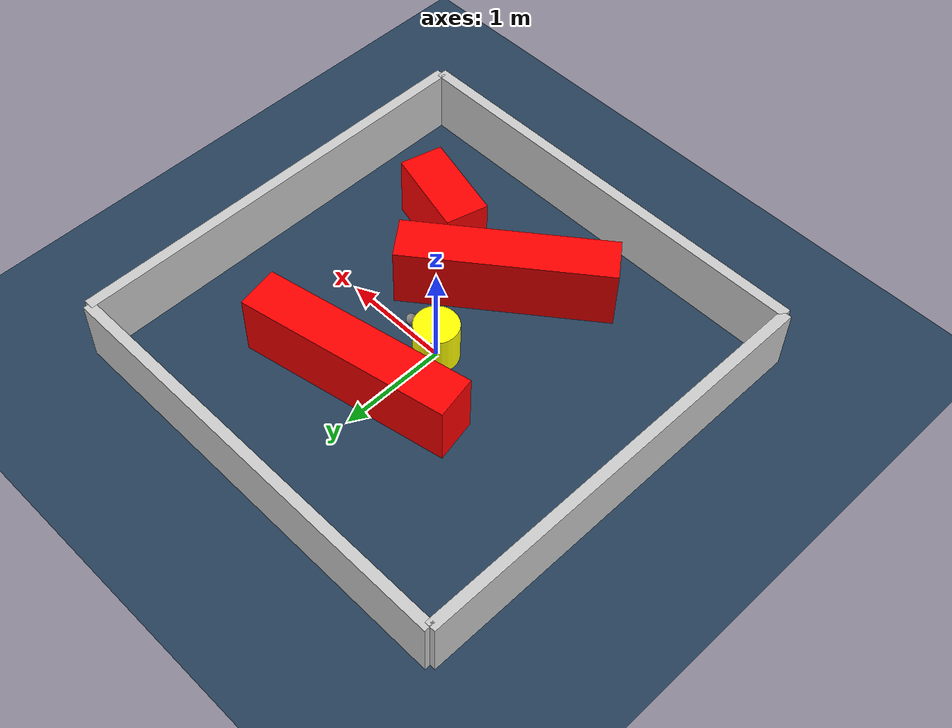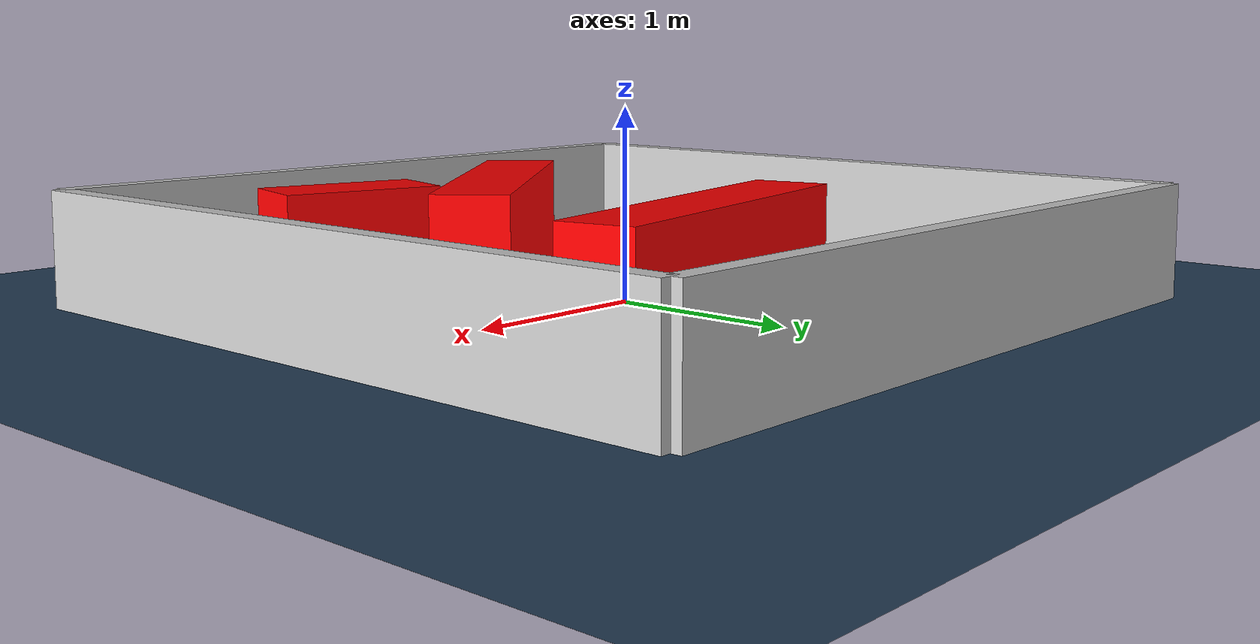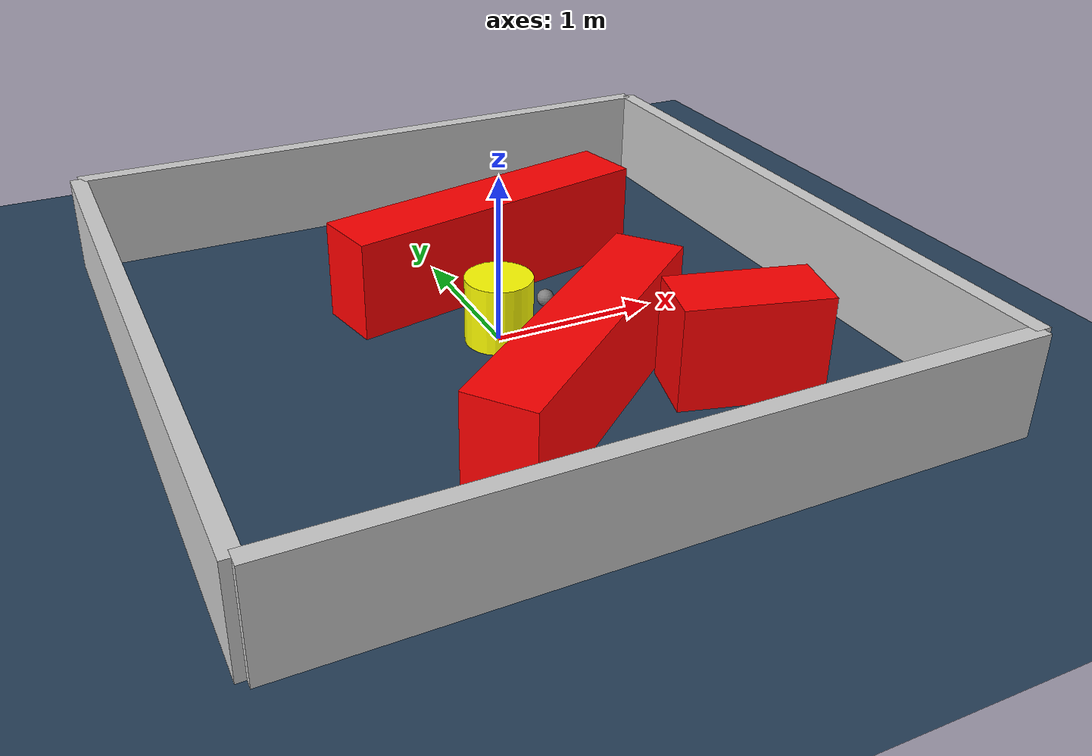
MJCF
<?xml version="1.0" ?>
<mujoco model="generated_environment">
  <option timestep="0.01" integrator="RK4" cone="elliptic"/>
  <default>
    <geom density="1"/>
  </default>
  <asset>
    <texture builtin="gradient" height="3072" rgb1="0.3 0.5 0.7" rgb2="0 0 0" type="skybox" width="512"/>
    <texture builtin="checker" height="300" mark="edge" markrgb="0.8 0.8 0.8" name="groundplane" rgb1="0.2 0.3 0.4" rgb2="0.1 0.2 0.3" type="2d" width="300"/>
    <material name="groundplane" reflectance="0.2" texrepeat="5 5" texture="groundplane" texuniform="true"/>
    <material name="robot" rgba="0.0 1.0 0.0 1"/>
  </asset>
  <worldbody>
    <light dir="0 0 -1" directional="true" pos="0 0 1.5"/>
    <geom condim="4" friction="1.0 0.005 0.001" material="groundplane" name="floor" size="0 0 0.05" type="plane"/>
    <body name="walls">
      <geom name="wall_1" condim="4" pos="-2.0 0.0 0.3" rgba="0.800000011920929 0.800000011920929 0.800000011920929 1.0" size="0.05 2.0 0.3" type="box"/>
      <geom name="wall_2" condim="4" pos="2.0 0.0 0.3" rgba="0.800000011920929 0.800000011920929 0.800000011920929 1.0" size="0.05 2.0 0.3" type="box"/>
      <geom name="wall_3" condim="4" pos="0.0 -2.0 0.3" rgba="0.800000011920929 0.800000011920929 0.800000011920929 1.0" size="2.0 0.05 0.3" type="box"/>
      <geom name="wall_4" condim="4" pos="0.0 2.0 0.3" rgba="0.800000011920929 0.800000011920929 0.800000011920929 1.0" size="2.0 0.05 0.3" type="box"/>
    </body>
    <body name="robot">
      <joint name="joint_x" type="slide" pos="0 0 0" axis="1 0 0"/>
      <joint name="joint_y" type="slide" pos="0 0 0" axis="0 1 0"/>
      <geom name="robot" type="sphere" pos="0.3 0.0 0.2" size="0.05" mass="5." friction="1.0 0.005 0.0001" condim="4" rgba="0.5 0.5 0.5 1.0"/>
      <site name="sensor_ball"/>
    </body>
    <body name="obstacle_movable_1">
      <geom name="obstacle_movable_1" condim="4" pos="0.0 0.0 0.2" euler="0 0 0.0" friction="1.0 0.005 0.001" rgba="1.0 1.0 0.0 1.0" size="0.2 0.2 0.0" type="cylinder" mass="0.1"/>
      <joint type="free"/>
    </body>
    <body name="obstacle_2_static">
      <geom name="obstacle_2_static" condim="4" pos="0.22545344807699497 0.6981753770337276 0.3" euler="0 0 191.5335368008927" friction="1.0 0.005 0.001" rgba="1 0 0 1" size="0.9892258760314878 0.2 0.3" type="box"/>
    </body>
    <body name="obstacle_3_static">
      <geom name="obstacle_3_static" condim="4" pos="0.05624822072706159 -0.8834640928999876 0.3" euler="0 0 38.18665255037378" friction="1.0 0.005 0.001" rgba="1 0 0 1" size="0.9469875307153213 0.2 0.3" type="box"/>
    </body>
    <body name="obstacle_4_static">
      <geom name="obstacle_4_static" condim="4" pos="0.9617029601832794 -1.0164396861003082 0.3" euler="0 0 345.317273423863" friction="1.0 0.005 0.001" rgba="1 0 0 1" size="0.4107126029388235 0.2 0.3" type="box"/>
    </body>
  </worldbody>
  <actuator>
    <motor name="actuator_x" joint="joint_x" gear="1" ctrlrange="-1 1"/>
    <motor name="actuator_y" joint="joint_y" gear="1" ctrlrange="-1 1"/>
  </actuator>
</mujoco>
